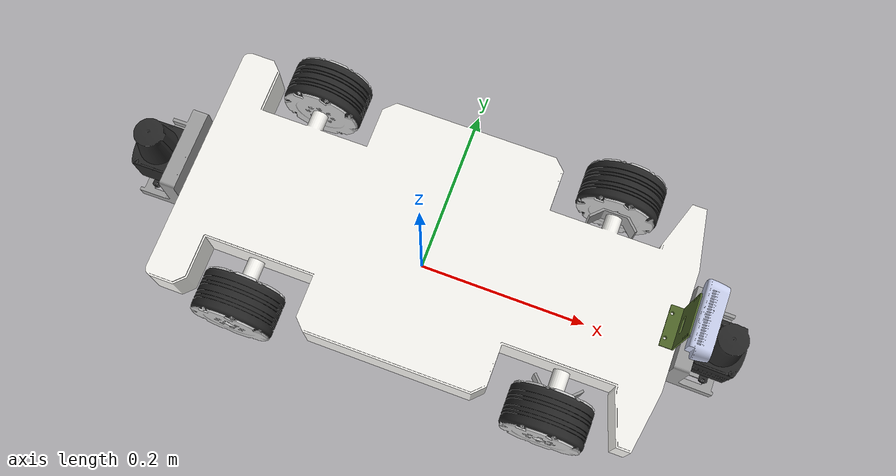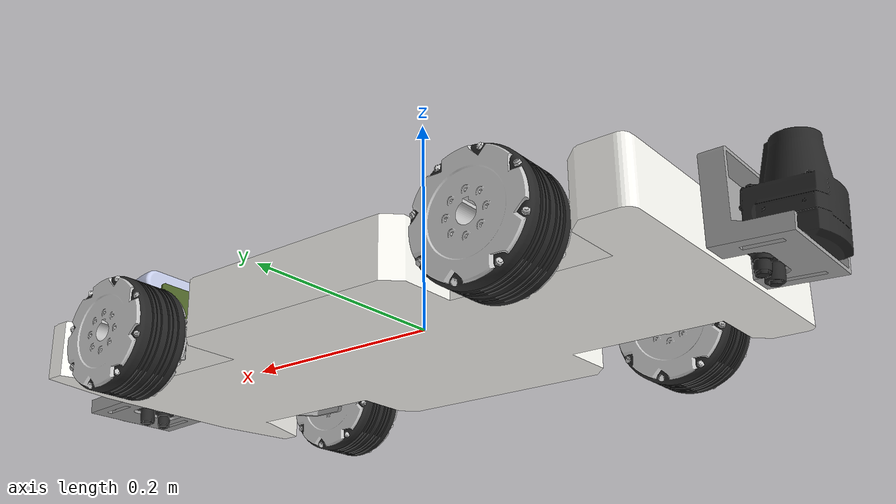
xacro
<?xml version="1.0"?>
<robot xmlns:xacro="http://www.ros.org/wiki/xacro" name="mobile_robot">

<xacro:property name="PI" value="3.141592654"/>

<xacro:include filename="$(find mobile_robot_description)/urdf/materials.xacro" />
<xacro:include filename="$(find mobile_robot_description)/urdf/mobile_robot.xacro" />
<xacro:include filename="$(find mobile_robot_description)/urdf/lidar.xacro" />
<xacro:include filename="$(find mobile_robot_description)/urdf/gazebo.xacro" />
<xacro:include filename="$(find mobile_robot_description)/urdf/mobile_robot.ros2_control.xacro" />

<link name="base_link"/>

<joint name="base_footprint_joint" type="fixed">
    <parent link="base_link"/>
    <child link="base_footprint"/>
    <origin xyz="0.0 0.0 0.0" rpy="0.0 0.0 0.0"/>
</joint>

<link name="base_footprint"/>

<joint name="chassis_joint" type="fixed">
    <parent link="base_link"/>
    <child link="chassis"/>
    <origin xyz="0.0 0.0 0.0" rpy="0.0 0.0 0.0"/>
</joint>

<joint name="lidar1_joint" type="fixed">
    <parent link="chassis"/>
    <child link="Lidar1_link"/>
    <origin xyz="0.0 0.0 0.3" rpy="0.0 0.0 0.0"/>
</joint>

</robot>

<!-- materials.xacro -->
<robot name="mobile_robot" xmlns:xacro="http://www.ros.org/wiki/xacro" >

<material name="silver_default">
  <color rgba="0.700 0.700 0.700 1.000"/>
</material>
<material name="opaque160160160">
  <color rgba="0.6274509803921569 0.6274509803921569 0.6274509803921569 1.0"/>
</material>
<material name="paint_metallic_silver">
  <color rgba="0.984313725490196 0.9803921568627451 0.9607843137254902 1.0"/>
</material>
<material name="opaque153153153">
  <color rgba="0.6 0.6 0.6 1.0"/>
</material>
<material name="opaque8210543">
  <color rgba="0.3215686274509804 0.4117647058823529 0.16862745098039217 1.0"/>
</material>
<material name="opaque202209238">
  <color rgba="0.792156862745098 0.8196078431372549 0.9333333333333333 1.0"/>
</material>
<material name="steel_satin">
  <color rgba="0.6274509803921569 0.6274509803921569 0.6274509803921569 1.0"/>
</material>
<material name="stainless_steel_polished">
  <color rgba="0.796078431372549 0.796078431372549 0.796078431372549 1.0"/>
</material>
<material name="rubber_soft">
  <color rgba="0.15294117647058825 0.15294117647058825 0.15294117647058825 1.0"/>
</material>

</robot>

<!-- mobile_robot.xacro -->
<robot name="mobile_robot" xmlns:xacro="http://www.ros.org/wiki/xacro">

<link name="chassis">
  <inertial>
    <origin xyz="0.0 0.02588707927115077 0.01097141774192208" rpy="0 0 0"/>
    <mass value="2.1479557811007264"/>
    <inertia ixx="0.017182" iyy="0.071938" izz="0.086976" ixy="0.0" iyz="0.0" ixz="1e-06"/>
  </inertial>
  <visual>
    <origin xyz="0 0 0" rpy="0 0 0"/>
    <geometry>
      <mesh filename="package://mobile_robot_description/meshes/chassis.stl" scale="0.001 0.001 0.001"/>
    </geometry>
    <material name="paint_metallic_silver"/>
  </visual>
  <collision>
    <origin xyz="0 0 0" rpy="0 0 0"/>
    <geometry>
      <mesh filename="package://mobile_robot_description/meshes/chassis.stl" scale="0.001 0.001 0.001"/>
    </geometry>
  </collision>
</link>

<link name="LidarHolder1">
  <inertial>
    <origin xyz="0.015804511129251686 0.03514639979720871 0.019369872402762806" rpy="0 0 0"/>
    <mass value="0.37541853710379985"/>
    <inertia ixx="0.000745" iyy="0.000374" izz="0.000605" ixy="0.0" iyz="0.0" ixz="0.000101"/>
  </inertial>
  <visual>
    <origin xyz="-0.30383 0.009113 0.017217" rpy="0 0 0"/>
    <geometry>
      <mesh filename="package://mobile_robot_description/meshes/LidarHolder_v1_1.stl" scale="0.001 0.001 0.001"/>
    </geometry>
    <material name="opaque160160160"/>
  </visual>
  <collision>
    <origin xyz="-0.30383 0.009113 0.017217" rpy="0 0 0"/>
    <geometry>
      <mesh filename="package://mobile_robot_description/meshes/LidarHolder_v1_1.stl" scale="0.001 0.001 0.001"/>
    </geometry>
  </collision>
</link>

<link name="LidarHolder2">
  <inertial>
    <origin xyz="-0.015804902804203214 -0.035146241254900235 0.01936987240276325" rpy="0 0 0"/>
    <mass value="0.37541853710379985"/>
    <inertia ixx="0.000745" iyy="0.000374" izz="0.000605" ixy="0.0" iyz="0.0" ixz="-0.000101"/>
  </inertial>
  <visual>
    <origin xyz="0.29617 -0.060887 0.017217" rpy="0 0 0"/>
    <geometry>
      <mesh filename="package://mobile_robot_description/meshes/LidarHolder_v1_2.stl" scale="0.001 0.001 0.001"/>
    </geometry>
    <material name="opaque160160160"/>
  </visual>
  <collision>
    <origin xyz="0.29617 -0.060887 0.017217" rpy="0 0 0"/>
    <geometry>
      <mesh filename="package://mobile_robot_description/meshes/LidarHolder_v1_2.stl" scale="0.001 0.001 0.001"/>
    </geometry>
  </collision>
</link>

<link name="Lidar1">
  <inertial>
    <origin xyz="0.009638192294889492 3.794968745678834e-06 0.03203134563452798" rpy="0 0 0"/>
    <mass value="1.644794790117091"/>
    <inertia ixx="0.001184" iyy="0.001199" izz="0.00078" ixy="1e-06" iyz="0.0" ixz="-5.7e-05"/>
  </inertial>
  <visual>
    <origin xyz="-0.34016 -0.026087 0.02483" rpy="0 0 0"/>
    <geometry>
      <mesh filename="package://mobile_robot_description/meshes/Lidar_v1_1.stl" scale="0.001 0.001 0.001"/>
    </geometry>
    <material name="rubber_soft"/>
  </visual>
  <collision>
    <origin xyz="-0.34016 -0.026087 0.02483" rpy="0 0 0"/>
    <geometry>
      <mesh filename="package://mobile_robot_description/meshes/Lidar_v1_1.stl" scale="0.001 0.001 0.001"/>
    </geometry>
  </collision>
</link>

<link name="Lidar2">
  <inertial>
    <origin xyz="-0.00963858396984113 -3.6364264360995435e-06 0.03203134563452855" rpy="0 0 0"/>
    <mass value="1.644794790117091"/>
    <inertia ixx="0.001184" iyy="0.001199" izz="0.00078" ixy="1e-06" iyz="0.0" ixz="5.7e-05"/>
  </inertial>
  <visual>
    <origin xyz="0.3325 -0.025687 0.02483" rpy="0 0 0"/>
    <geometry>
      <mesh filename="package://mobile_robot_description/meshes/Lidar_v1_2.stl" scale="0.001 0.001 0.001"/>
    </geometry>
    <material name="rubber_soft"/>
  </visual>
  <collision>
    <origin xyz="0.3325 -0.025687 0.02483" rpy="0 0 0"/>
    <geometry>
      <mesh filename="package://mobile_robot_description/meshes/Lidar_v1_2.stl" scale="0.001 0.001 0.001"/>
    </geometry>
  </collision>
</link>

<link name="CameraHolder">
  <inertial>
    <origin xyz="-0.0028762693305350306 7.92710617356085e-08 0.03431879570232893" rpy="0 0 0"/>
    <mass value="0.008772362848130984"/>
    <inertia ixx="8e-06" iyy="6e-06" izz="2e-06" ixy="0.0" iyz="0.0" ixz="0.0"/>
  </inertial>
  <visual>
    <origin xyz="-0.30183 -0.025887 -0.022283" rpy="0 0 0"/>
    <geometry>
      <mesh filename="package://mobile_robot_description/meshes/CameraHolder_v1_1.stl" scale="0.001 0.001 0.001"/>
    </geometry>
    <material name="opaque8210543"/>
  </visual>
  <collision>
    <origin xyz="-0.30183 -0.025887 -0.022283" rpy="0 0 0"/>
    <geometry>
      <mesh filename="package://mobile_robot_description/meshes/CameraHolder_v1_1.stl" scale="0.001 0.001 0.001"/>
    </geometry>
  </collision>
</link>

<link name="IntelRealsense_D435_Multibody">
  <inertial>
    <origin xyz="0.012083247005288789 -0.0017176616378805597 -0.00026729286230678384" rpy="0 0 0"/>
    <mass value="0.0448008806050122"/>
    <inertia ixx="2.8e-05" iyy="4e-06" izz="2.8e-05" ixy="0.0" iyz="0.0" ixz="0.0"/>
  </inertial>
  <visual>
    <origin xyz="-0.30133 -0.025887 -0.102283" rpy="0 0 0"/>
    <geometry>
      <mesh filename="package://mobile_robot_description/meshes/IntelRealsense_D435_Multibody_v1_1.stl" scale="0.001 0.001 0.001"/>
    </geometry>
    <material name="opaque202209238"/>
  </visual>
  <collision>
    <origin xyz="-0.30133 -0.025887 -0.102283" rpy="0 0 0"/>
    <geometry>
      <mesh filename="package://mobile_robot_description/meshes/IntelRealsense_D435_Multibody_v1_1.stl" scale="0.001 0.001 0.001"/>
    </geometry>
  </collision>
</link>

<link name="Wheelbracket_1">
  <inertial>
    <origin xyz="-1.9582307592136416e-07 -0.004772997905408721 1.1656628540537839e-07" rpy="0 0 0"/>
    <mass value="0.049388743686028615"/>
    <inertia ixx="5e-06" iyy="1.9e-05" izz="1.7e-05" ixy="0.0" iyz="0.0" ixz="0.0"/>
  </inertial>
  <visual>
    <origin xyz="-0.19383 -0.140887 0.009717" rpy="0 0 0"/>
    <geometry>
      <mesh filename="package://mobile_robot_description/meshes/Wheelbracket_1.stl" scale="0.001 0.001 0.001"/>
    </geometry>
    <material name="steel_satin"/>
  </visual>
  <collision>
    <origin xyz="-0.19383 -0.140887 0.009717" rpy="0 0 0"/>
    <geometry>
      <mesh filename="package://mobile_robot_description/meshes/Wheelbracket_1.stl" scale="0.001 0.001 0.001"/>
    </geometry>
  </collision>
</link>

<link name="Wheelbracket_2">
  <inertial>
    <origin xyz="-1.9585173963165836e-07 0.004773156447613891 1.1656628535160196e-07" rpy="0 0 0"/>
    <mass value="0.049388743686028615"/>
    <inertia ixx="5e-06" iyy="1.9e-05" izz="1.7e-05" ixy="0.0" iyz="0.0" ixz="0.0"/>
  </inertial>
  <visual>
    <origin xyz="-0.19383 0.089113 0.009717" rpy="0 0 0"/>
    <geometry>
      <mesh filename="package://mobile_robot_description/meshes/Wheelbracket_2.stl" scale="0.001 0.001 0.001"/>
    </geometry>
    <material name="steel_satin"/>
  </visual>
  <collision>
    <origin xyz="-0.19383 0.089113 0.009717" rpy="0 0 0"/>
    <geometry>
      <mesh filename="package://mobile_robot_description/meshes/Wheelbracket_2.stl" scale="0.001 0.001 0.001"/>
    </geometry>
  </collision>
</link>

<link name="left_front_wheel">
  <inertial>
    <origin xyz="-5.128158228312474e-06 0.026005348189964833 -2.6552614371962158e-05" rpy="0 0 0"/>
    <mass value="1.2161031585645365"/>
    <inertia ixx="0.001054" iyy="0.001161" izz="0.001054" ixy="0.0" iyz="0.0" ixz="0.0"/>
  </inertial>
  <visual>
    <origin xyz="-0.19383 -0.141887 0.009717" rpy="0 0 0"/>
    <geometry>
      <mesh filename="package://mobile_robot_description/meshes/wheel_v3_1.stl" scale="0.001 0.001 0.001"/>
    </geometry>
    <material name="stainless_steel_polished"/>
  </visual>
  <collision>
    <origin xyz="-0.19383 -0.141887 0.009717" rpy="0 0 0"/>
    <geometry>
      <mesh filename="package://mobile_robot_description/meshes/wheel_v3_1.stl" scale="0.001 0.001 0.001"/>
    </geometry>
  </collision>
</link>

<link name="right_front_wheel">
  <inertial>
    <origin xyz="-5.128158229367186e-06 -0.025994651810035158 -2.6552614371413985e-05" rpy="0 0 0"/>
    <mass value="1.2161031585645365"/>
    <inertia ixx="0.001054" iyy="0.001161" izz="0.001054" ixy="0.0" iyz="0.0" ixz="0.0"/>
  </inertial>
  <visual>
    <origin xyz="-0.19383 0.089113 0.009717" rpy="0 0 0"/>
    <geometry>
      <mesh filename="package://mobile_robot_description/meshes/wheel_v3_2.stl" scale="0.001 0.001 0.001"/>
    </geometry>
    <material name="stainless_steel_polished"/>
  </visual>
  <collision>
    <origin xyz="-0.19383 0.089113 0.009717" rpy="0 0 0"/>
    <geometry>
      <mesh filename="package://mobile_robot_description/meshes/wheel_v3_2.stl" scale="0.001 0.001 0.001"/>
    </geometry>
  </collision>
</link>

<link name="left_rear_wheel">
  <inertial>
    <origin xyz="-5.1281582968132344e-06 0.026005348189965943 -2.655261437073224e-05" rpy="0 0 0"/>
    <mass value="1.2161031585645365"/>
    <inertia ixx="0.001054" iyy="0.001161" izz="0.001054" ixy="0.0" iyz="0.0" ixz="0.0"/>
  </inertial>
  <visual>
    <origin xyz="0.18617 -0.140887 0.009717" rpy="0 0 0"/>
    <geometry>
      <mesh filename="package://mobile_robot_description/meshes/wheel_v3_3.stl" scale="0.001 0.001 0.001"/>
    </geometry>
    <material name="stainless_steel_polished"/>
  </visual>
  <collision>
    <origin xyz="0.18617 -0.140887 0.009717" rpy="0 0 0"/>
    <geometry>
      <mesh filename="package://mobile_robot_description/meshes/wheel_v3_3.stl" scale="0.001 0.001 0.001"/>
    </geometry>
  </collision>
</link>

<link name="right_rear_wheel">
  <inertial>
    <origin xyz="-5.128158297507124e-06 -0.02599465181003413 -2.6552614371335923e-05" rpy="0 0 0"/>
    <mass value="1.2161031585645365"/>
    <inertia ixx="0.001054" iyy="0.001161" izz="0.001054" ixy="0.0" iyz="0.0" ixz="0.0"/>
  </inertial>
  <visual>
    <origin xyz="0.18617 0.089113 0.009717" rpy="0 0 0"/>
    <geometry>
      <mesh filename="package://mobile_robot_description/meshes/wheel_v3_4.stl" scale="0.001 0.001 0.001"/>
    </geometry>
    <material name="stainless_steel_polished"/>
  </visual>
  <collision>
    <origin xyz="0.18617 0.089113 0.009717" rpy="0 0 0"/>
    <geometry>
      <mesh filename="package://mobile_robot_description/meshes/wheel_v3_4.stl" scale="0.001 0.001 0.001"/>
    </geometry>
  </collision>
</link>

<link name="tyre1">
  <inertial>
    <origin xyz="-1.9583740731854427e-07 7.953336139676637e-08 1.1656628770735644e-07" rpy="0 0 0"/>
    <mass value="0.0610343816894878"/>
    <inertia ixx="8.4e-05" iyy="0.000134" izz="8.4e-05" ixy="0.0" iyz="0.0" ixz="0.0"/>
  </inertial>
  <visual>
    <origin xyz="-0.19383 -0.167887 0.009717" rpy="0 0 0"/>
    <geometry>
      <mesh filename="package://mobile_robot_description/meshes/tyre_v2_1.stl" scale="0.001 0.001 0.001"/>
    </geometry>
    <material name="rubber_soft"/>
  </visual>
  <collision>
    <origin xyz="-0.19383 -0.167887 0.009717" rpy="0 0 0"/>
    <geometry>
      <mesh filename="package://mobile_robot_description/meshes/tyre_v2_1.stl" scale="0.001 0.001 0.001"/>
    </geometry>
  </collision>
</link>

<link name="tyre2">
  <inertial>
    <origin xyz="-1.95837408317745e-07 7.95333614800331e-08 1.1656628824512072e-07" rpy="0 0 0"/>
    <mass value="0.0610343816894878"/>
    <inertia ixx="8.4e-05" iyy="0.000134" izz="8.4e-05" ixy="0.0" iyz="0.0" ixz="0.0"/>
  </inertial>
  <visual>
    <origin xyz="-0.19383 0.115113 0.009717" rpy="0 0 0"/>
    <geometry>
      <mesh filename="package://mobile_robot_description/meshes/tyre_v2_2.stl" scale="0.001 0.001 0.001"/>
    </geometry>
    <material name="rubber_soft"/>
  </visual>
  <collision>
    <origin xyz="-0.19383 0.115113 0.009717" rpy="0 0 0"/>
    <geometry>
      <mesh filename="package://mobile_robot_description/meshes/tyre_v2_2.stl" scale="0.001 0.001 0.001"/>
    </geometry>
  </collision>
</link>
<gazebo reference_link = "tyre">

</gazebo>

<link name="tyre3">
  <inertial>
    <origin xyz="-1.9583747581930488e-07 7.95333626180117e-08 1.1656628890951981e-07" rpy="0 0 0"/>
    <mass value="0.0610343816894878"/>
    <inertia ixx="8.4e-05" iyy="0.000134" izz="8.4e-05" ixy="0.0" iyz="0.0" ixz="0.0"/>
  </inertial>
  <visual>
    <origin xyz="0.18617 -0.166887 0.009717" rpy="0 0 0"/>
    <geometry>
      <mesh filename="package://mobile_robot_description/meshes/tyre_v2_3.stl" scale="0.001 0.001 0.001"/>
    </geometry>
    <material name="rubber_soft"/>
  </visual>
  <collision>
    <origin xyz="0.18617 -0.166887 0.009717" rpy="0 0 0"/>
    <geometry>
      <mesh filename="package://mobile_robot_description/meshes/tyre_v2_3.stl" scale="0.001 0.001 0.001"/>
    </geometry>
  </collision>
</link>

<link name="tyre4">
  <inertial>
    <origin xyz="-1.9583747651319428e-07 7.953336242372266e-08 1.1656628833012217e-07" rpy="0 0 0"/>
    <mass value="0.0610343816894878"/>
    <inertia ixx="8.4e-05" iyy="0.000134" izz="8.4e-05" ixy="0.0" iyz="0.0" ixz="0.0"/>
  </inertial>
  <visual>
    <origin xyz="0.18617 0.115113 0.009717" rpy="0 0 0"/>
    <geometry>
      <mesh filename="package://mobile_robot_description/meshes/tyre_v2_4.stl" scale="0.001 0.001 0.001"/>
    </geometry>
    <material name="rubber_soft"/>
  </visual>
  <collision>
    <origin xyz="0.18617 0.115113 0.009717" rpy="0 0 0"/>
    <geometry>
      <mesh filename="package://mobile_robot_description/meshes/tyre_v2_4.stl" scale="0.001 0.001 0.001"/>
    </geometry>
  </collision>
</link>

<joint name="Rigid 1" type="fixed">
  <origin xyz="0.30383 -0.009113 -0.017217" rpy="0 0 0"/>
  <parent link="chassis"/>
  <child link="LidarHolder1"/>
</joint>

<joint name="Rigid 2" type="fixed">
  <origin xyz="-0.29617 0.060887 -0.017217" rpy="0 0 0"/>
  <parent link="chassis"/>
  <child link="LidarHolder2"/>
</joint>

<joint name="Rigid 3" type="fixed">
  <origin xyz="0.03633 0.0352 -0.007613" rpy="0 0 0"/>
  <parent link="LidarHolder1"/>
  <child link="Lidar1"/>
</joint>

<joint name="Rigid 4" type="fixed">
  <origin xyz="-0.03633 -0.0352 -0.007613" rpy="0 0 0"/>
  <parent link="LidarHolder2"/>
  <child link="Lidar2"/>
</joint>

<joint name="Rigid 5" type="fixed">
  <origin xyz="0.30183 0.025887 0.022283" rpy="0 0 0"/>
  <parent link="chassis"/>
  <child link="CameraHolder"/>
</joint>

<joint name="Rigid 6" type="fixed">
  <origin xyz="-0.0005 0.0 0.08" rpy="0 0 0"/>
  <parent link="CameraHolder"/>
  <child link="IntelRealsense_D435_Multibody"/>
</joint>

<joint name="left_steer_joint" type="revolute">
  <origin xyz="0.19383 0.140887 -0.009717" rpy="0 0 0"/>
  <parent link="chassis"/>
  <child link="Wheelbracket_1"/>
  <axis xyz="0.0 0.0 1.0"/>
  <limit upper="1.047198" lower="-1.047198" effort="100" velocity="100"/>
</joint>

<joint name="right_steer_joint" type="revolute">
  <origin xyz="0.19383 -0.089113 -0.009717" rpy="0 0 0"/>
  <parent link="chassis"/>
  <child link="Wheelbracket_2"/>
  <axis xyz="0.0 0.0 1.0"/>
  <limit upper="1.047198" lower="-1.047198" effort="100" velocity="100"/>
</joint>

<joint name="left_front_wheel_joint" type="continuous">
  <origin xyz="0.0 0.0 0.0" rpy="0 0 0"/>
  <parent link="Wheelbracket_1"/>
  <child link="left_front_wheel"/>
  <axis xyz="0.0 1.0 0.0"/>
  <limit effort="200.0" velocity="20.0"/>
  <dynamics friction="0.0001"/>
</joint>

<joint name="right_front_wheel_joint" type="continuous">
  <origin xyz="0.0 0.0 0.0" rpy="0 0 0"/>
  <parent link="Wheelbracket_2"/>
  <child link="right_front_wheel"/>
  <axis xyz="0.0 1.0 0.0"/>
  <limit effort="200.0" velocity="20.0"/>
  <dynamics friction="0.0001"/>
</joint>

<joint name="left_rear_wheel_joint" type="continuous">
  <origin xyz="-0.18617 0.140887 -0.009717" rpy="0 0 0"/>
  <parent link="chassis"/>
  <child link="left_rear_wheel"/>
  <axis xyz="0.0 1.0 0.0"/>
  <limit effort="200.0" velocity="20.0"/>
  <dynamics damping="1.0" friction="1.0"/>
</joint>

<joint name="right_rear_wheel_joint" type="continuous">
  <origin xyz="-0.18617 -0.089113 -0.009717" rpy="0 0 0"/>
  <parent link="chassis"/>
  <child link="right_rear_wheel"/>
  <axis xyz="0.0 1.0 0.0"/>
  <limit effort="200.0" velocity="20.0"/>
  <dynamics damping="1.0" friction="1.0"/>
</joint>

<joint name="Rigid 23" type="fixed">
  <origin xyz="0.0 0.026 0.0" rpy="0 0 0"/>
  <parent link="left_front_wheel"/>
  <child link="tyre1"/>
</joint>

<joint name="Rigid 24" type="fixed">
  <origin xyz="0.0 -0.026 0.0" rpy="0 0 0"/>
  <parent link="right_front_wheel"/>
  <child link="tyre2"/>
</joint>

<joint name="Rigid 25" type="fixed">
  <origin xyz="0.0 0.026 0.0" rpy="0 0 0"/>
  <parent link="left_rear_wheel"/>
  <child link="tyre3"/>
</joint>

<joint name="Rigid 26" type="fixed">
  <origin xyz="0.0 -0.026 0.0" rpy="0 0 0"/>
  <parent link="right_rear_wheel"/>
  <child link="tyre4"/>
</joint>

</robot>

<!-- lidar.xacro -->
<robot xmlns:xacro="http://www.ros.org/wiki/xacro" name="lidar">

    <!-- Lidar1 -->
    <link name="Lidar1_link"/>
    <gazebo reference="Lidar1_link">
        <sensor name="Lidar1_link" type="gpu_lidar">
            <gz_frame_id>Lidar1_link</gz_frame_id>
            <topic>scan</topic>
            <update_rate>30</update_rate>

            <lidar>
                <scan>
                    <horizontal>
                        <samples>360</samples>
                        <resolution>1</resolution>
                        <min_angle>-3.14</min_angle>
                        <max_angle>3.14</max_angle>
                    </horizontal>
                    <vertical>
                        <samples>1</samples>
                        <resolution>0.1</resolution>
                        <min_angle>0.0</min_angle>
                        <max_angle>0.0</max_angle>
                    </vertical>
                </scan>
                <range>
                    <min>0.3</min>
                    <max>12</max>
                </range>
            </lidar>
            <alwaysOn>true</alwaysOn>
            <visualize>true</visualize>
        </sensor>
    </gazebo>

    <!-- Lidar2 -->

</robot>
